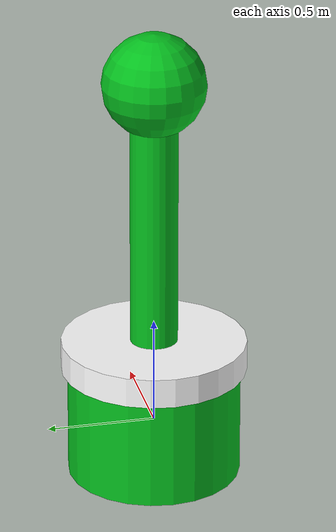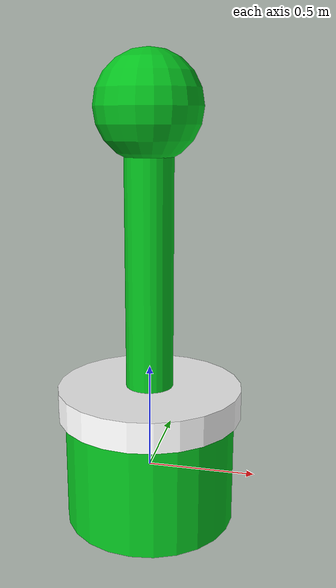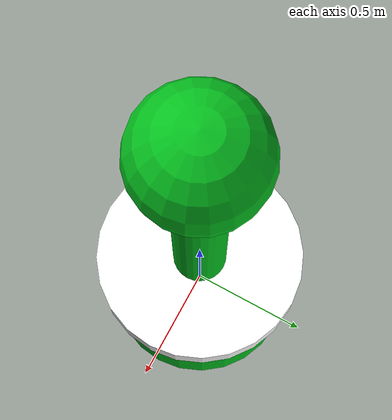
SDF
<?xml version="1.0"?>
<sdf version="1.9">
  <model name="codex_marker_buoy_green">
    <static>true</static>
    <link name="link">
      <collision name="collision_outer">
        <pose>0 0 0.75 0 0 0</pose>
        <geometry><cylinder><radius>0.42</radius><length>2.0</length></cylinder></geometry>
      </collision>
      <visual name="float">
        <pose>0 0 0.08 0 0 0</pose>
        <geometry><cylinder><radius>0.40</radius><length>0.65</length></cylinder></geometry>
        <material><ambient>0.01 0.42 0.08 1</ambient><diffuse>0.02 0.75 0.12 1</diffuse></material>
      </visual>
      <visual name="reflective_band">
        <pose>0 0 0.34 0 0 0</pose>
        <geometry><cylinder><radius>0.43</radius><length>0.14</length></cylinder></geometry>
        <material><ambient>0.8 0.8 0.8 1</ambient><diffuse>1 1 1 1</diffuse></material>
      </visual>
      <visual name="mast">
        <pose>0 0 0.96 0 0 0</pose>
        <geometry><cylinder><radius>0.11</radius><length>1.35</length></cylinder></geometry>
        <material><ambient>0.01 0.42 0.08 1</ambient><diffuse>0.02 0.75 0.12 1</diffuse></material>
      </visual>
      <visual name="topmark">
        <pose>0 0 1.67 0 0 0</pose>
        <geometry><sphere><radius>0.24</radius></sphere></geometry>
        <material><ambient>0.01 0.42 0.08 1</ambient><diffuse>0.02 0.75 0.12 1</diffuse></material>
      </visual>
    </link>
  </model>
</sdf>
